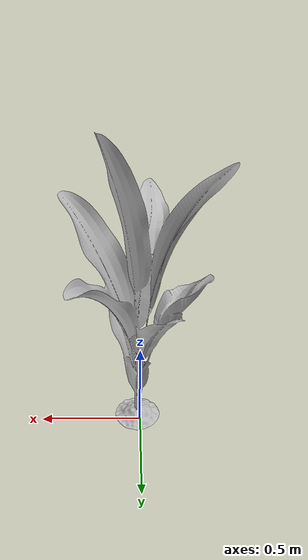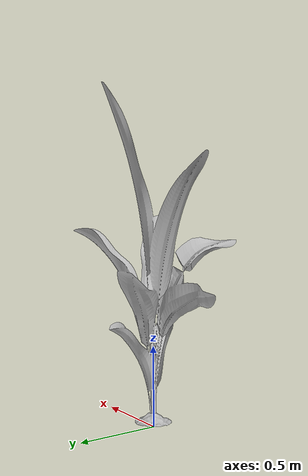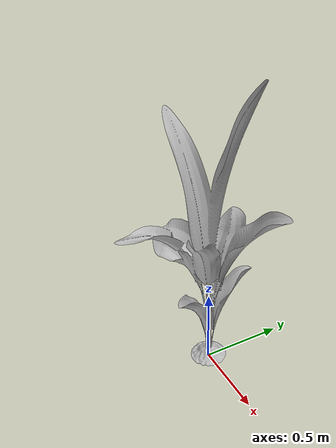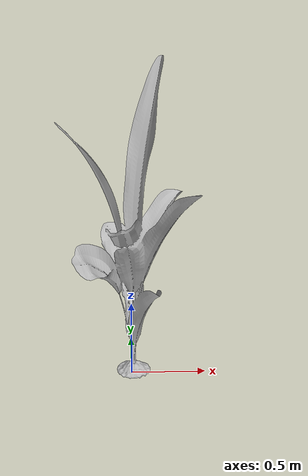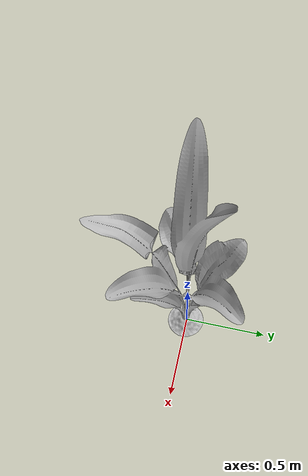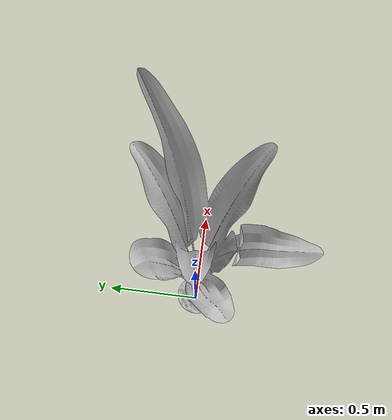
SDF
<?xml version="1.0" ?>
<sdf version="1.6">
  <model name="plant_2">

    <static>true</static>

    <link name="link">

      <visual name="visual">
        <pose>0 0 0 1.5708  0 0 </pose>
        <geometry>
          <mesh>
            <uri>model://plant_2/meshes/Plant2.obj</uri>
            <scale>1 2 1</scale>
          </mesh>
        </geometry>
      </visual>

      <collision name="collision">
      <pose>0 0 1.0 0 0 1.5708 </pose>
        <geometry>
          <cylinder>
            <radius>0.2</radius>
            <length>0.5</length>
          </cylinder>
        </geometry>
      </collision>

    </link>
  </model>
</sdf>
